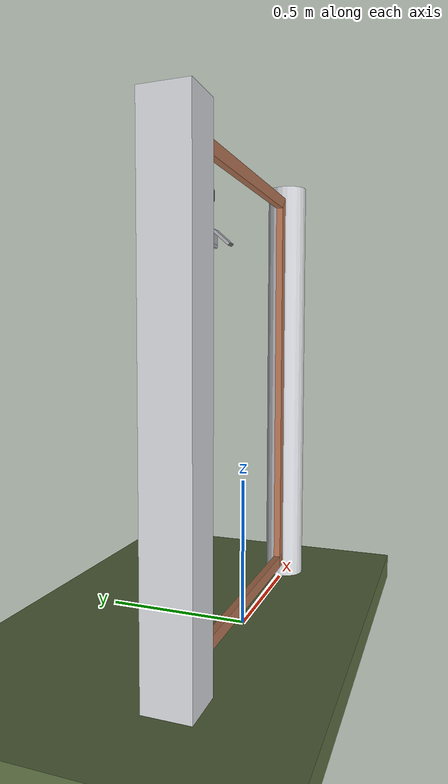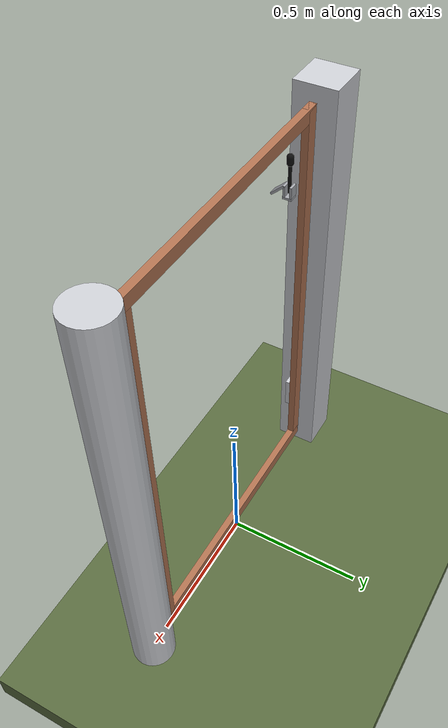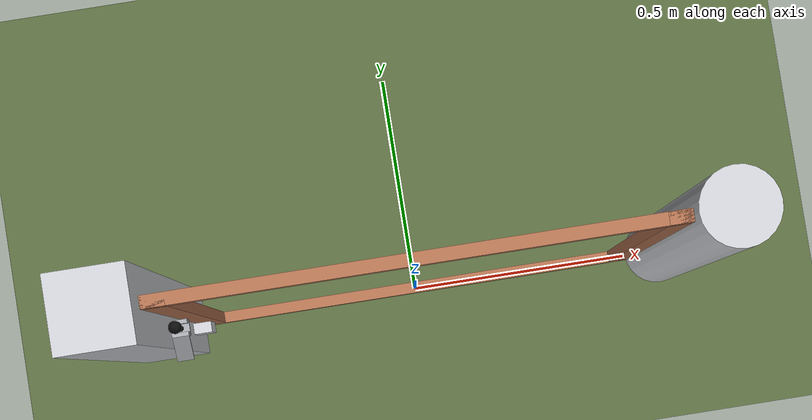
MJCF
<?xml version="1.0" ?>
<mujoco model="db0854_gate_swing_minimal">
  <compiler angle="radian" meshdir="../../hardware" texturedir="../../textures" autolimits="true" inertiafromgeom="false"/>
  <option timestep="0.002" integrator="implicitfast" cone="elliptic" impratio="10" noslip_iterations="3">
    <flag multiccd="enable"/>
  </option>
  <size memory="16M"/>
  <default>
    <geom condim="4" solref="0.005 1" solimp="0.95 0.99 0.001"/>
    <joint solreflimit="0.005 1" solimplimit="0.95 0.99 0.001"/>
    <tendon solreflimit="0.005 1"/>
    <equality solref="0.002 1"/>
  </default>
  <visual>
    <headlight ambient="0.4 0.4 0.4" diffuse="0.7 0.7 0.7" specular="0.2 0.2 0.2"/>
    <quality shadowsize="4096"/>
    <map znear="0.01" zfar="60"/>
  </visual>
  <asset>
    <material name="mat_floor" rgba="0.35 0.42 0.25 1" specular="0.2" shininess="0.15" reflectance="0"/>
    <material name="mat_wall" rgba="0.78 0.76 0.7 1" specular="0.2" shininess="0.1" reflectance="0"/>
    <material name="mat_leaf" rgba="0.7 0.45 0.32 1" specular="0.2" shininess="0.4" reflectance="0"/>
    <material name="mat_hinge" rgba="0.65 0.66 0.68 1" specular="0.74" shininess="0.5" reflectance="0.36"/>
    <material name="mat_op_black_matte_metal" rgba="0.05 0.05 0.05 1" specular="0.38" shininess="0.3" reflectance="0.12"/>
    <material name="mat_keeper" rgba="0.65 0.66 0.68 1" specular="0.74" shininess="0.5" reflectance="0.36"/>
    <material name="mat_frame" rgba="0.8 0.81 0.83 1" specular="0.8" shininess="0.6" reflectance="0.4"/>
    <material name="mat_fence_mesh" rgba="0.6 0.62 0.64 0.5" specular="0.68" shininess="0.3" reflectance="0.1"/>
    <texture name="skybox" type="skybox" builtin="gradient" rgb1="0.6 0.7 0.85" rgb2="0.9 0.92 0.95" width="256" height="256"/>
  </asset>
  <worldbody>
    <light name="sun" pos="1.5 -2.5 4" dir="-0.3 0.5 -0.8" directional="true" diffuse="0.8 0.8 0.8" specular="0.3 0.3 0.3" castshadow="true"/>
    <light name="fill" pos="-1.5 2.5 3" dir="0.3 -0.5 -0.7" directional="true" diffuse="0.35 0.35 0.4" castshadow="false"/>
    <camera name="robot_view" pos="0 -2.05 1.334" xyaxes="1 0 0 0 0.26963 0.962964" fovy="52"/>
    <camera name="far_view" pos="0 2.05 1.334" xyaxes="-1 0 0 0 -0.26963 0.962964" fovy="52"/>
    <camera name="iso" pos="-1.558 -1.722 1.662" xyaxes="0.741536 -0.670913 0 0.242917 0.268487 0.932151" fovy="46"/>
    <camera name="detail_handle" pos="-0.277 -0.8475 1.645" xyaxes="0.97561 0.219512 0 -0.070934 0.315262 0.94635" fovy="38"/>
    <geom name="floor" type="box" size="6 6 0.05" pos="0 0 -0.05" material="mat_floor" group="0" contype="1" conaffinity="1" friction="0.8 0.005 0.0001" density="2400"/>
    <geom name="post_hinge" type="cylinder" size="0.075 0.8" pos="0.581 0 0.8" material="mat_frame" group="0" contype="1" conaffinity="1" friction="0.6 0.005 0.0001" density="800"/>
    <geom name="post_latch" type="box" size="0.075 0.075 0.8" pos="-0.581 0 0.8" material="mat_frame" group="0" contype="1" conaffinity="1" friction="0.6 0.005 0.0001" density="800"/>
    <geom name="gate_stop" type="box" size="0.02 0.012 0.06" pos="-0.486 -0.0245 0.3" material="mat_frame" group="0" contype="1" conaffinity="1" friction="0.6 0.005 0.0001" density="800"/>
    <site name="approach_point" pos="0 -1.5 0" quat="1 0 0 0" size="0.05" rgba="0.2 0.9 0.2 0.5" group="4"/>
    <site name="goal_point" pos="0 1.5 0" quat="1 0 0 0" size="0.05" rgba="0.2 0.9 0.2 0.5" group="4"/>
    <site name="door_plane_center" pos="0 0 0.76" quat="1 0 0 0" size="0.02" rgba="0.2 0.9 0.2 0.5" group="4"/>
    <body name="leaf" pos="0.506 0 0">
      <inertial pos="-0.514739 -0.001532 0.81147" mass="16.496832" quat="-0.489985 0.484376 0.513517 0.511463" diaginertia="1.425255812 3.104843973 4.52535039"/>
      <joint name="leaf_hinge" type="hinge" axis="0 0 -1" pos="-0.003 0.05 0" limited="true" range="0 1.570796" damping="8.2709" frictionloss="0.45081" stiffness="5" springref="-0.8" armature="0.02"/>
      <geom name="leaf_slab_col" type="box" size="0.5 0.0125 0.75" pos="-0.503 0 0.8" material="mat_leaf" group="3" contype="1" conaffinity="1" rgba="0.8 0.3 0.3 0.25" friction="0.35 0.005 0.0001" density="1"/>
      <geom name="leaf_rail_b" type="box" size="0.5 0.0125 0.0225" pos="-0.503 0 0.0725" material="mat_leaf" group="1" contype="0" conaffinity="0" density="1"/>
      <geom name="leaf_rail_t" type="box" size="0.5 0.0125 0.0225" pos="-0.503 0 1.5275" material="mat_leaf" group="1" contype="0" conaffinity="0" density="1"/>
      <geom name="leaf_stile_h" type="box" size="0.0225 0.0125 0.75" pos="-0.0255 0 0.8" material="mat_leaf" group="1" contype="0" conaffinity="0" density="1"/>
      <geom name="leaf_stile_l" type="box" size="0.0225 0.0125 0.75" pos="-0.9805 0 0.8" material="mat_leaf" group="1" contype="0" conaffinity="0" density="1"/>
      <geom name="leaf_cup_n" type="box" size="0.016 0.004 0.02" pos="-0.963 -0.0595 1.255" material="mat_keeper" group="0" contype="1" conaffinity="1" friction="0.6 0.005 0.0001" density="7800"/>
      <geom name="leaf_cup_p" type="box" size="0.016 0.004 0.02" pos="-0.963 -0.0355 1.255" material="mat_keeper" group="0" contype="1" conaffinity="1" friction="0.6 0.005 0.0001" density="7800"/>
      <geom name="leaf_cup_b" type="box" size="0.016 0.016 0.004" pos="-0.963 -0.0475 1.231" material="mat_keeper" group="0" contype="1" conaffinity="1" friction="0.6 0.005 0.0001" density="7800"/>
      <geom name="leaf_cup_ramp" type="box" size="0.016 0.0301 0.004" pos="-0.963 -0.083344 1.252012" quat="0.355381 -0.934722 0 0" material="mat_keeper" group="0" contype="1" conaffinity="1" friction="0.12 0.005 0.0001" density="7800"/>
      <site name="leaf_edge_mid" pos="-1.003 0 0.75" quat="1 0 0 0" size="0.02" rgba="0.2 0.9 0.2 0.5" group="4"/>
    </body>
    <body name="leaf_pin" pos="-0.457 -0.0475 1.3">
      <inertial pos="0 0 0.037519" mass="0.228168" quat="0.707107 0 0.707107 0" diaginertia="0.000010167 0.000346413 0.000346413"/>
      <joint name="leaf_pin_slide" type="slide" axis="0 0 1" limited="true" range="0 0.06" damping="9.526824" frictionloss="0.25" stiffness="60" springref="-0.016667" armature="0.15"/>
      <geom name="leaf_pin_geom" type="capsule" size="0.006 0.0525" pos="0 0 0.0025" material="mat_op_black_matte_metal" group="0" contype="1" conaffinity="1" friction="0.6 0.005 0.0001" density="7850"/>
      <geom name="leaf_pin_knob" type="capsule" size="0.012 0.01" pos="0 0 0.065" material="mat_op_black_matte_metal" group="0" contype="1" conaffinity="1" friction="0.6 0.005 0.0001" density="7850"/>
      <site name="leaf_grip_pin" pos="0 0 0.065" quat="1 0 0 0" size="0.012" rgba="0.2 0.9 0.2 0.5" group="4"/>
    </body>
  </worldbody>
  <sensor>
    <jointpos name="leaf_hinge_pos" joint="leaf_hinge"/>
    <jointvel name="leaf_hinge_vel" joint="leaf_hinge"/>
    <jointpos name="leaf_pin_slide_pos" joint="leaf_pin_slide"/>
    <jointvel name="leaf_pin_slide_vel" joint="leaf_pin_slide"/>
  </sensor>
</mujoco>
